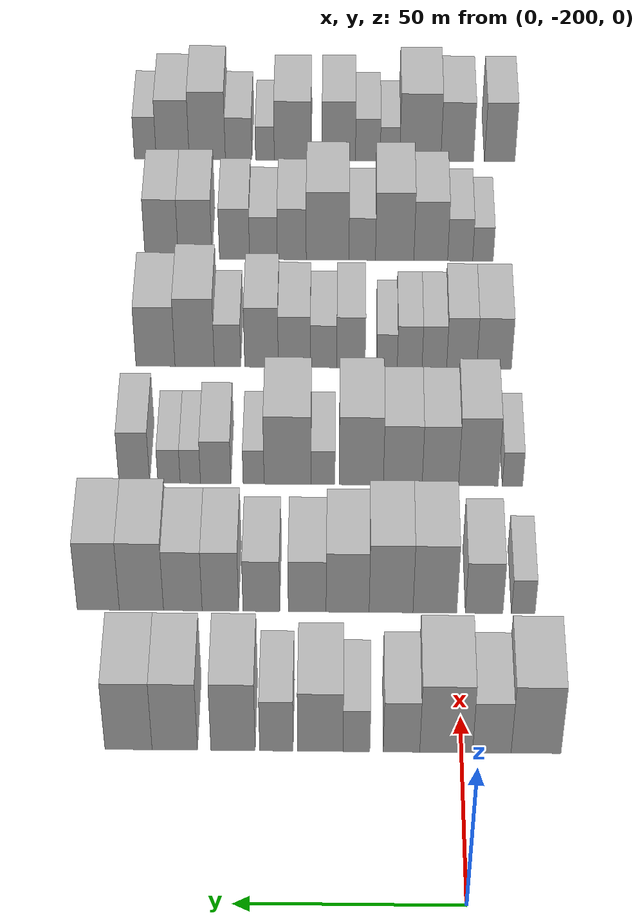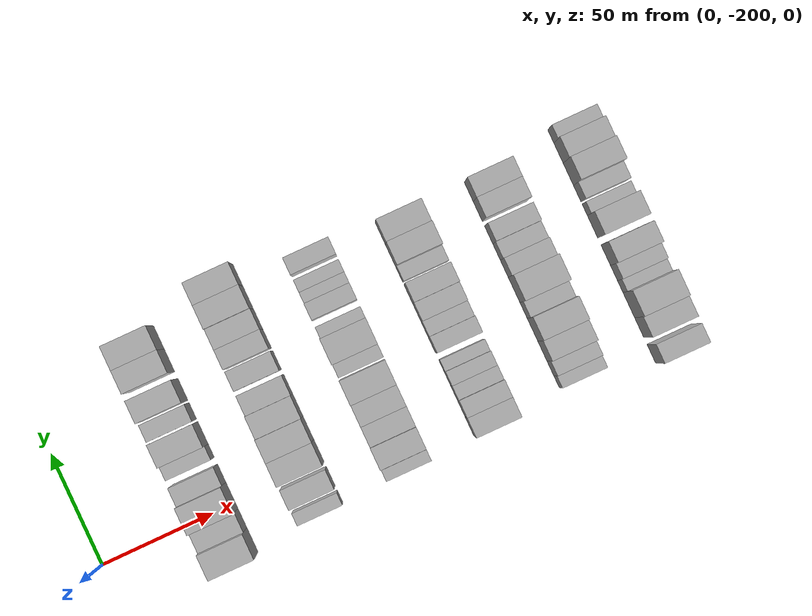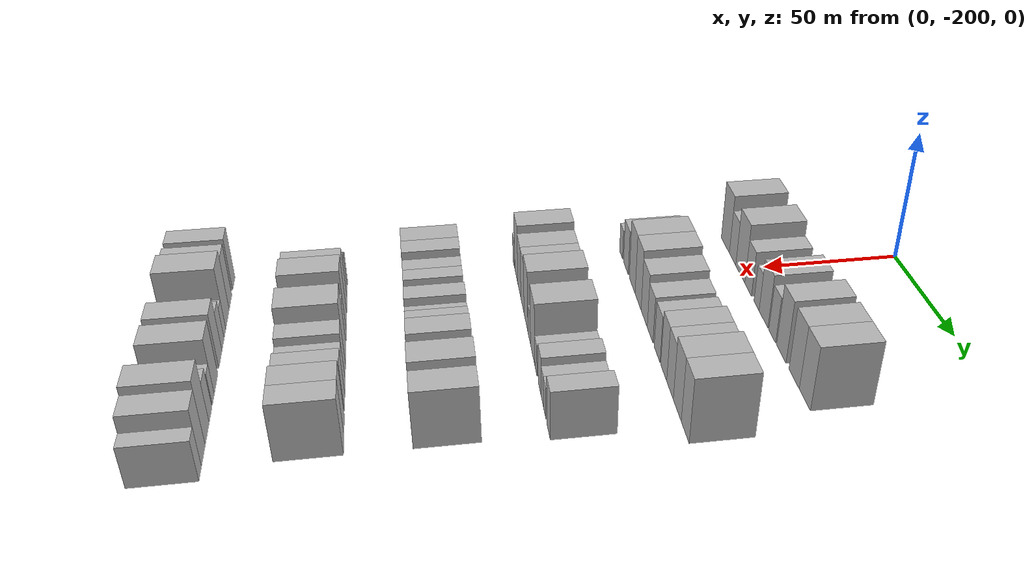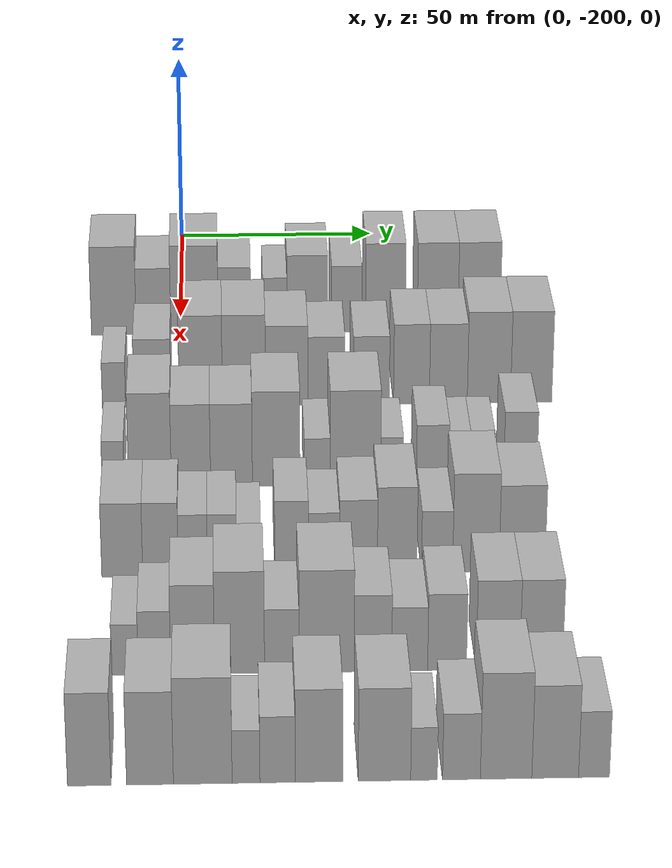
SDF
<sdf version="1.6">
 <world name="default">
  <model name="building_44">
   <static>1</static>
   <pose>50.0000 -216.5647 0 0.000000 0.000000 0.000000</pose>
   <link name="link">
    <pose>0 0 12.00 0 0 0</pose>
    <collision name="collision"><geometry><box><size>20.0000 11.1475 24.0000</size></box></geometry></collision>
    <visual name="visual">
     <cast_shadows>0</cast_shadows>
     <geometry><box><size>20.0000 11.1475 24.0000</size></box></geometry>
     <material>
      <script>
       <uri>model://HANNAS_wall/materials/scripts</uri>
       <uri>model://HANNAS_wall/materials/textures</uri>
       <name>vrc/HANNAS_wall</name>
      </script>
     </material>
    </visual>
   </link>
  </model>
  <model name="building_45">
   <static>1</static>
   <pose>50.0000 -206.6863 0 0.000000 0.000000 0.000000</pose>
   <link name="link">
    <pose>0 0 9.00 0 0 0</pose>
    <collision name="collision"><geometry><box><size>20.0000 8.6094 18.0000</size></box></geometry></collision>
    <visual name="visual">
     <cast_shadows>0</cast_shadows>
     <geometry><box><size>20.0000 8.6094 18.0000</size></box></geometry>
     <material>
      <script>
       <uri>model://HANNAS_wall/materials/scripts</uri>
       <uri>model://HANNAS_wall/materials/textures</uri>
       <name>vrc/HANNAS_wall</name>
      </script>
     </material>
    </visual>
   </link>
  </model>
  <model name="building_46">
   <static>1</static>
   <pose>50.0000 -196.4800 0 0.000000 0.000000 0.000000</pose>
   <link name="link">
    <pose>0 0 12.00 0 0 0</pose>
    <collision name="collision"><geometry><box><size>20.0000 11.8031 24.0000</size></box></geometry></collision>
    <visual name="visual">
     <cast_shadows>0</cast_shadows>
     <geometry><box><size>20.0000 11.8031 24.0000</size></box></geometry>
     <material>
      <script>
       <uri>model://HANNAS_wall/materials/scripts</uri>
       <uri>model://HANNAS_wall/materials/textures</uri>
       <name>vrc/HANNAS_wall</name>
      </script>
     </material>
    </visual>
   </link>
  </model>
  <model name="building_47">
   <static>1</static>
   <pose>50.0000 -186.5021 0 0.000000 0.000000 0.000000</pose>
   <link name="link">
    <pose>0 0 9.00 0 0 0</pose>
    <collision name="collision"><geometry><box><size>20.0000 8.1527 18.0000</size></box></geometry></collision>
    <visual name="visual">
     <cast_shadows>0</cast_shadows>
     <geometry><box><size>20.0000 8.1527 18.0000</size></box></geometry>
     <material>
      <script>
       <uri>model://HANNAS_wall/materials/scripts</uri>
       <uri>model://HANNAS_wall/materials/textures</uri>
       <name>vrc/HANNAS_wall</name>
      </script>
     </material>
    </visual>
   </link>
  </model>
  <model name="building_48">
   <static>1</static>
   <pose>50.0000 -176.4154 0 0.000000 0.000000 0.000000</pose>
   <link name="link">
    <pose>0 0 7.50 0 0 0</pose>
    <collision name="collision"><geometry><box><size>20.0000 6.0208 15.0000</size></box></geometry></collision>
    <visual name="visual">
     <cast_shadows>0</cast_shadows>
     <geometry><box><size>20.0000 6.0208 15.0000</size></box></geometry>
     <material>
      <script>
       <uri>model://HANNAS_wall/materials/scripts</uri>
       <uri>model://HANNAS_wall/materials/textures</uri>
       <name>vrc/HANNAS_wall</name>
      </script>
     </material>
    </visual>
   </link>
  </model>
  <model name="building_49">
   <static>1</static>
   <pose>50.0000 -168.3408 0 0.000000 0.000000 0.000000</pose>
   <link name="link">
    <pose>0 0 10.50 0 0 0</pose>
    <collision name="collision"><geometry><box><size>20.0000 10.1284 21.0000</size></box></geometry></collision>
    <visual name="visual">
     <cast_shadows>0</cast_shadows>
     <geometry><box><size>20.0000 10.1284 21.0000</size></box></geometry>
     <material>
      <script>
       <uri>model://HANNAS_wall/materials/scripts</uri>
       <uri>model://HANNAS_wall/materials/textures</uri>
       <name>vrc/HANNAS_wall</name>
      </script>
     </material>
    </visual>
   </link>
  </model>
  <model name="building_50">
   <static>1</static>
   <pose>50.0000 -158.5359 0 0.000000 0.000000 0.000000</pose>
   <link name="link">
    <pose>0 0 9.00 0 0 0</pose>
    <collision name="collision"><geometry><box><size>20.0000 7.4814 18.0000</size></box></geometry></collision>
    <visual name="visual">
     <cast_shadows>0</cast_shadows>
     <geometry><box><size>20.0000 7.4814 18.0000</size></box></geometry>
     <material>
      <script>
       <uri>model://HANNAS_wall/materials/scripts</uri>
       <uri>model://HANNAS_wall/materials/textures</uri>
       <name>vrc/HANNAS_wall</name>
      </script>
     </material>
    </visual>
   </link>
  </model>
  <model name="building_51">
   <static>1</static>
   <pose>50.0000 -148.8419 0 0.000000 0.000000 0.000000</pose>
   <link name="link">
    <pose>0 0 12.00 0 0 0</pose>
    <collision name="collision"><geometry><box><size>20.0000 9.9065 24.0000</size></box></geometry></collision>
    <visual name="visual">
     <cast_shadows>0</cast_shadows>
     <geometry><box><size>20.0000 9.9065 24.0000</size></box></geometry>
     <material>
      <script>
       <uri>model://HANNAS_wall/materials/scripts</uri>
       <uri>model://HANNAS_wall/materials/textures</uri>
       <name>vrc/HANNAS_wall</name>
      </script>
     </material>
    </visual>
   </link>
  </model>
  <model name="building_52">
   <static>1</static>
   <pose>50.0000 -135.8023 0 0.000000 0.000000 0.000000</pose>
   <link name="link">
    <pose>0 0 12.00 0 0 0</pose>
    <collision name="collision"><geometry><box><size>20.0000 10.1729 24.0000</size></box></geometry></collision>
    <visual name="visual">
     <cast_shadows>0</cast_shadows>
     <geometry><box><size>20.0000 10.1729 24.0000</size></box></geometry>
     <material>
      <script>
       <uri>model://HANNAS_wall/materials/scripts</uri>
       <uri>model://HANNAS_wall/materials/textures</uri>
       <name>vrc/HANNAS_wall</name>
      </script>
     </material>
    </visual>
   </link>
  </model>
  <model name="building_53">
   <static>1</static>
   <pose>50.0000 -125.4422 0 0.000000 0.000000 0.000000</pose>
   <link name="link">
    <pose>0 0 12.00 0 0 0</pose>
    <collision name="collision"><geometry><box><size>20.0000 10.5472 24.0000</size></box></geometry></collision>
    <visual name="visual">
     <cast_shadows>0</cast_shadows>
     <geometry><box><size>20.0000 10.5472 24.0000</size></box></geometry>
     <material>
      <script>
       <uri>model://HANNAS_wall/materials/scripts</uri>
       <uri>model://HANNAS_wall/materials/textures</uri>
       <name>vrc/HANNAS_wall</name>
      </script>
     </material>
    </visual>
   </link>
  </model>
  <model name="building_176">
   <static>1</static>
   <pose>90.0000 -215.4520 0 0.000000 0.000000 0.000000</pose>
   <link name="link">
    <pose>0 0 6.00 0 0 0</pose>
    <collision name="collision"><geometry><box><size>20.0000 5.5303 12.0000</size></box></geometry></collision>
    <visual name="visual">
     <cast_shadows>0</cast_shadows>
     <geometry><box><size>20.0000 5.5303 12.0000</size></box></geometry>
     <material>
      <script>
       <uri>model://HANNAS_wall/materials/scripts</uri>
       <uri>model://HANNAS_wall/materials/textures</uri>
       <name>vrc/HANNAS_wall</name>
      </script>
     </material>
    </visual>
   </link>
  </model>
  <model name="building_177">
   <static>1</static>
   <pose>90.0000 -206.3000 0 0.000000 0.000000 0.000000</pose>
   <link name="link">
    <pose>0 0 9.00 0 0 0</pose>
    <collision name="collision"><geometry><box><size>20.0000 8.7736 18.0000</size></box></geometry></collision>
    <visual name="visual">
     <cast_shadows>0</cast_shadows>
     <geometry><box><size>20.0000 8.7736 18.0000</size></box></geometry>
     <material>
      <script>
       <uri>model://HANNAS_wall/materials/scripts</uri>
       <uri>model://HANNAS_wall/materials/textures</uri>
       <name>vrc/HANNAS_wall</name>
      </script>
     </material>
    </visual>
   </link>
  </model>
  <model name="building_178">
   <static>1</static>
   <pose>90.0000 -194.7817 0 0.000000 0.000000 0.000000</pose>
   <link name="link">
    <pose>0 0 12.00 0 0 0</pose>
    <collision name="collision"><geometry><box><size>20.0000 10.2629 24.0000</size></box></geometry></collision>
    <visual name="visual">
     <cast_shadows>0</cast_shadows>
     <geometry><box><size>20.0000 10.2629 24.0000</size></box></geometry>
     <material>
      <script>
       <uri>model://HANNAS_wall/materials/scripts</uri>
       <uri>model://HANNAS_wall/materials/textures</uri>
       <name>vrc/HANNAS_wall</name>
      </script>
     </material>
    </visual>
   </link>
  </model>
  <model name="building_179">
   <static>1</static>
   <pose>90.0000 -184.5133 0 0.000000 0.000000 0.000000</pose>
   <link name="link">
    <pose>0 0 12.00 0 0 0</pose>
    <collision name="collision"><geometry><box><size>20.0000 10.2740 24.0000</size></box></geometry></collision>
    <visual name="visual">
     <cast_shadows>0</cast_shadows>
     <geometry><box><size>20.0000 10.2740 24.0000</size></box></geometry>
     <material>
      <script>
       <uri>model://HANNAS_wall/materials/scripts</uri>
       <uri>model://HANNAS_wall/materials/textures</uri>
       <name>vrc/HANNAS_wall</name>
      </script>
     </material>
    </visual>
   </link>
  </model>
  <model name="building_180">
   <static>1</static>
   <pose>90.0000 -174.3441 0 0.000000 0.000000 0.000000</pose>
   <link name="link">
    <pose>0 0 10.50 0 0 0</pose>
    <collision name="collision"><geometry><box><size>20.0000 10.0643 21.0000</size></box></geometry></collision>
    <visual name="visual">
     <cast_shadows>0</cast_shadows>
     <geometry><box><size>20.0000 10.0643 21.0000</size></box></geometry>
     <material>
      <script>
       <uri>model://HANNAS_wall/materials/scripts</uri>
       <uri>model://HANNAS_wall/materials/textures</uri>
       <name>vrc/HANNAS_wall</name>
      </script>
     </material>
    </visual>
   </link>
  </model>
  <model name="building_181">
   <static>1</static>
   <pose>90.0000 -164.8928 0 0.000000 0.000000 0.000000</pose>
   <link name="link">
    <pose>0 0 9.00 0 0 0</pose>
    <collision name="collision"><geometry><box><size>20.0000 8.8382 18.0000</size></box></geometry></collision>
    <visual name="visual">
     <cast_shadows>0</cast_shadows>
     <geometry><box><size>20.0000 8.8382 18.0000</size></box></geometry>
     <material>
      <script>
       <uri>model://HANNAS_wall/materials/scripts</uri>
       <uri>model://HANNAS_wall/materials/textures</uri>
       <name>vrc/HANNAS_wall</name>
      </script>
     </material>
    </visual>
   </link>
  </model>
  <model name="building_182">
   <static>1</static>
   <pose>90.0000 -154.1672 0 0.000000 0.000000 0.000000</pose>
   <link name="link">
    <pose>0 0 9.00 0 0 0</pose>
    <collision name="collision"><geometry><box><size>20.0000 8.6129 18.0000</size></box></geometry></collision>
    <visual name="visual">
     <cast_shadows>0</cast_shadows>
     <geometry><box><size>20.0000 8.6129 18.0000</size></box></geometry>
     <material>
      <script>
       <uri>model://HANNAS_wall/materials/scripts</uri>
       <uri>model://HANNAS_wall/materials/textures</uri>
       <name>vrc/HANNAS_wall</name>
      </script>
     </material>
    </visual>
   </link>
  </model>
  <model name="building_183">
   <static>1</static>
   <pose>90.0000 -144.5751 0 0.000000 0.000000 0.000000</pose>
   <link name="link">
    <pose>0 0 10.50 0 0 0</pose>
    <collision name="collision"><geometry><box><size>20.0000 8.5715 21.0000</size></box></geometry></collision>
    <visual name="visual">
     <cast_shadows>0</cast_shadows>
     <geometry><box><size>20.0000 8.5715 21.0000</size></box></geometry>
     <material>
      <script>
       <uri>model://HANNAS_wall/materials/scripts</uri>
       <uri>model://HANNAS_wall/materials/textures</uri>
       <name>vrc/HANNAS_wall</name>
      </script>
     </material>
    </visual>
   </link>
  </model>
  <model name="building_184">
   <static>1</static>
   <pose>90.0000 -135.7618 0 0.000000 0.000000 0.000000</pose>
   <link name="link">
    <pose>0 0 10.50 0 0 0</pose>
    <collision name="collision"><geometry><box><size>20.0000 9.0550 21.0000</size></box></geometry></collision>
    <visual name="visual">
     <cast_shadows>0</cast_shadows>
     <geometry><box><size>20.0000 9.0550 21.0000</size></box></geometry>
     <material>
      <script>
       <uri>model://HANNAS_wall/materials/scripts</uri>
       <uri>model://HANNAS_wall/materials/textures</uri>
       <name>vrc/HANNAS_wall</name>
      </script>
     </material>
    </visual>
   </link>
  </model>
  <model name="building_185">
   <static>1</static>
   <pose>90.0000 -126.0591 0 0.000000 0.000000 0.000000</pose>
   <link name="link">
    <pose>0 0 12.00 0 0 0</pose>
    <collision name="collision"><geometry><box><size>20.0000 10.3504 24.0000</size></box></geometry></collision>
    <visual name="visual">
     <cast_shadows>0</cast_shadows>
     <geometry><box><size>20.0000 10.3504 24.0000</size></box></geometry>
     <material>
      <script>
       <uri>model://HANNAS_wall/materials/scripts</uri>
       <uri>model://HANNAS_wall/materials/textures</uri>
       <name>vrc/HANNAS_wall</name>
      </script>
     </material>
    </visual>
   </link>
  </model>
  <model name="building_186">
   <static>1</static>
   <pose>90.0000 -115.9484 0 0.000000 0.000000 0.000000</pose>
   <link name="link">
    <pose>0 0 12.00 0 0 0</pose>
    <collision name="collision"><geometry><box><size>20.0000 9.8711 24.0000</size></box></geometry></collision>
    <visual name="visual">
     <cast_shadows>0</cast_shadows>
     <geometry><box><size>20.0000 9.8711 24.0000</size></box></geometry>
     <material>
      <script>
       <uri>model://HANNAS_wall/materials/scripts</uri>
       <uri>model://HANNAS_wall/materials/textures</uri>
       <name>vrc/HANNAS_wall</name>
      </script>
     </material>
    </visual>
   </link>
  </model>
  <model name="building_314">
   <static>1</static>
   <pose>130.0000 -214.5521 0 0.000000 0.000000 0.000000</pose>
   <link name="link">
    <pose>0 0 6.00 0 0 0</pose>
    <collision name="collision"><geometry><box><size>20.0000 4.9905 12.0000</size></box></geometry></collision>
    <visual name="visual">
     <cast_shadows>0</cast_shadows>
     <geometry><box><size>20.0000 4.9905 12.0000</size></box></geometry>
     <material>
      <script>
       <uri>model://HANNAS_wall/materials/scripts</uri>
       <uri>model://HANNAS_wall/materials/textures</uri>
       <name>vrc/HANNAS_wall</name>
      </script>
     </material>
    </visual>
   </link>
  </model>
  <model name="building_315">
   <static>1</static>
   <pose>130.0000 -206.2146 0 0.000000 0.000000 0.000000</pose>
   <link name="link">
    <pose>0 0 12.00 0 0 0</pose>
    <collision name="collision"><geometry><box><size>20.0000 9.6845 24.0000</size></box></geometry></collision>
    <visual name="visual">
     <cast_shadows>0</cast_shadows>
     <geometry><box><size>20.0000 9.6845 24.0000</size></box></geometry>
     <material>
      <script>
       <uri>model://HANNAS_wall/materials/scripts</uri>
       <uri>model://HANNAS_wall/materials/textures</uri>
       <name>vrc/HANNAS_wall</name>
      </script>
     </material>
    </visual>
   </link>
  </model>
  <model name="building_316">
   <static>1</static>
   <pose>130.0000 -196.9230 0 0.000000 0.000000 0.000000</pose>
   <link name="link">
    <pose>0 0 10.50 0 0 0</pose>
    <collision name="collision"><geometry><box><size>20.0000 8.8988 21.0000</size></box></geometry></collision>
    <visual name="visual">
     <cast_shadows>0</cast_shadows>
     <geometry><box><size>20.0000 8.8988 21.0000</size></box></geometry>
     <material>
      <script>
       <uri>model://HANNAS_wall/materials/scripts</uri>
       <uri>model://HANNAS_wall/materials/textures</uri>
       <name>vrc/HANNAS_wall</name>
      </script>
     </material>
    </visual>
   </link>
  </model>
  <model name="building_317">
   <static>1</static>
   <pose>130.0000 -187.7262 0 0.000000 0.000000 0.000000</pose>
   <link name="link">
    <pose>0 0 10.50 0 0 0</pose>
    <collision name="collision"><geometry><box><size>20.0000 9.4947 21.0000</size></box></geometry></collision>
    <visual name="visual">
     <cast_shadows>0</cast_shadows>
     <geometry><box><size>20.0000 9.4947 21.0000</size></box></geometry>
     <material>
      <script>
       <uri>model://HANNAS_wall/materials/scripts</uri>
       <uri>model://HANNAS_wall/materials/textures</uri>
       <name>vrc/HANNAS_wall</name>
      </script>
     </material>
    </visual>
   </link>
  </model>
  <model name="building_318">
   <static>1</static>
   <pose>130.0000 -177.5683 0 0.000000 0.000000 0.000000</pose>
   <link name="link">
    <pose>0 0 12.00 0 0 0</pose>
    <collision name="collision"><geometry><box><size>20.0000 10.8212 24.0000</size></box></geometry></collision>
    <visual name="visual">
     <cast_shadows>0</cast_shadows>
     <geometry><box><size>20.0000 10.8212 24.0000</size></box></geometry>
     <material>
      <script>
       <uri>model://HANNAS_wall/materials/scripts</uri>
       <uri>model://HANNAS_wall/materials/textures</uri>
       <name>vrc/HANNAS_wall</name>
      </script>
     </material>
    </visual>
   </link>
  </model>
  <model name="building_319">
   <static>1</static>
   <pose>130.0000 -168.2285 0 0.000000 0.000000 0.000000</pose>
   <link name="link">
    <pose>0 0 6.00 0 0 0</pose>
    <collision name="collision"><geometry><box><size>20.0000 5.8583 12.0000</size></box></geometry></collision>
    <visual name="visual">
     <cast_shadows>0</cast_shadows>
     <geometry><box><size>20.0000 5.8583 12.0000</size></box></geometry>
     <material>
      <script>
       <uri>model://HANNAS_wall/materials/scripts</uri>
       <uri>model://HANNAS_wall/materials/textures</uri>
       <name>vrc/HANNAS_wall</name>
      </script>
     </material>
    </visual>
   </link>
  </model>
  <model name="building_320">
   <static>1</static>
   <pose>130.0000 -159.5624 0 0.000000 0.000000 0.000000</pose>
   <link name="link">
    <pose>0 0 12.00 0 0 0</pose>
    <collision name="collision"><geometry><box><size>20.0000 11.4741 24.0000</size></box></geometry></collision>
    <visual name="visual">
     <cast_shadows>0</cast_shadows>
     <geometry><box><size>20.0000 11.4741 24.0000</size></box></geometry>
     <material>
      <script>
       <uri>model://HANNAS_wall/materials/scripts</uri>
       <uri>model://HANNAS_wall/materials/textures</uri>
       <name>vrc/HANNAS_wall</name>
      </script>
     </material>
    </visual>
   </link>
  </model>
  <model name="building_321">
   <static>1</static>
   <pose>130.0000 -151.2605 0 0.000000 0.000000 0.000000</pose>
   <link name="link">
    <pose>0 0 6.00 0 0 0</pose>
    <collision name="collision"><geometry><box><size>20.0000 5.1297 12.0000</size></box></geometry></collision>
    <visual name="visual">
     <cast_shadows>0</cast_shadows>
     <geometry><box><size>20.0000 5.1297 12.0000</size></box></geometry>
     <material>
      <script>
       <uri>model://HANNAS_wall/materials/scripts</uri>
       <uri>model://HANNAS_wall/materials/textures</uri>
       <name>vrc/HANNAS_wall</name>
      </script>
     </material>
    </visual>
   </link>
  </model>
  <model name="building_322">
   <static>1</static>
   <pose>130.0000 -141.9726 0 0.000000 0.000000 0.000000</pose>
   <link name="link">
    <pose>0 0 7.50 0 0 0</pose>
    <collision name="collision"><geometry><box><size>20.0000 7.4460 15.0000</size></box></geometry></collision>
    <visual name="visual">
     <cast_shadows>0</cast_shadows>
     <geometry><box><size>20.0000 7.4460 15.0000</size></box></geometry>
     <material>
      <script>
       <uri>model://HANNAS_wall/materials/scripts</uri>
       <uri>model://HANNAS_wall/materials/textures</uri>
       <name>vrc/HANNAS_wall</name>
      </script>
     </material>
    </visual>
   </link>
  </model>
  <model name="building_323">
   <static>1</static>
   <pose>130.0000 -135.7686 0 0.000000 0.000000 0.000000</pose>
   <link name="link">
    <pose>0 0 6.00 0 0 0</pose>
    <collision name="collision"><geometry><box><size>20.0000 4.9620 12.0000</size></box></geometry></collision>
    <visual name="visual">
     <cast_shadows>0</cast_shadows>
     <geometry><box><size>20.0000 4.9620 12.0000</size></box></geometry>
     <material>
      <script>
       <uri>model://HANNAS_wall/materials/scripts</uri>
       <uri>model://HANNAS_wall/materials/textures</uri>
       <name>vrc/HANNAS_wall</name>
      </script>
     </material>
    </visual>
   </link>
  </model>
  <model name="building_324">
   <static>1</static>
   <pose>130.0000 -130.5524 0 0.000000 0.000000 0.000000</pose>
   <link name="link">
    <pose>0 0 6.00 0 0 0</pose>
    <collision name="collision"><geometry><box><size>20.0000 5.4705 12.0000</size></box></geometry></collision>
    <visual name="visual">
     <cast_shadows>0</cast_shadows>
     <geometry><box><size>20.0000 5.4705 12.0000</size></box></geometry>
     <material>
      <script>
       <uri>model://HANNAS_wall/materials/scripts</uri>
       <uri>model://HANNAS_wall/materials/textures</uri>
       <name>vrc/HANNAS_wall</name>
      </script>
     </material>
    </visual>
   </link>
  </model>
  <model name="building_325">
   <static>1</static>
   <pose>130.0000 -122.0433 0 0.000000 0.000000 0.000000</pose>
   <link name="link">
    <pose>0 0 9.00 0 0 0</pose>
    <collision name="collision"><geometry><box><size>20.0000 7.5478 18.0000</size></box></geometry></collision>
    <visual name="visual">
     <cast_shadows>0</cast_shadows>
     <geometry><box><size>20.0000 7.5478 18.0000</size></box></geometry>
     <material>
      <script>
       <uri>model://HANNAS_wall/materials/scripts</uri>
       <uri>model://HANNAS_wall/materials/textures</uri>
       <name>vrc/HANNAS_wall</name>
      </script>
     </material>
    </visual>
   </link>
  </model>
  <model name="building_451">
   <static>1</static>
   <pose>170.0000 -211.5115 0 0.000000 0.000000 0.000000</pose>
   <link name="link">
    <pose>0 0 9.00 0 0 0</pose>
    <collision name="collision"><geometry><box><size>20.0000 8.8136 18.0000</size></box></geometry></collision>
    <visual name="visual">
     <cast_shadows>0</cast_shadows>
     <geometry><box><size>20.0000 8.8136 18.0000</size></box></geometry>
     <material>
      <script>
       <uri>model://HANNAS_wall/materials/scripts</uri>
       <uri>model://HANNAS_wall/materials/textures</uri>
       <name>vrc/HANNAS_wall</name>
      </script>
     </material>
    </visual>
   </link>
  </model>
  <model name="building_452">
   <static>1</static>
   <pose>170.0000 -203.2543 0 0.000000 0.000000 0.000000</pose>
   <link name="link">
    <pose>0 0 9.00 0 0 0</pose>
    <collision name="collision"><geometry><box><size>20.0000 7.7008 18.0000</size></box></geometry></collision>
    <visual name="visual">
     <cast_shadows>0</cast_shadows>
     <geometry><box><size>20.0000 7.7008 18.0000</size></box></geometry>
     <material>
      <script>
       <uri>model://HANNAS_wall/materials/scripts</uri>
       <uri>model://HANNAS_wall/materials/textures</uri>
       <name>vrc/HANNAS_wall</name>
      </script>
     </material>
    </visual>
   </link>
  </model>
  <model name="building_453">
   <static>1</static>
   <pose>170.0000 -196.2650 0 0.000000 0.000000 0.000000</pose>
   <link name="link">
    <pose>0 0 7.50 0 0 0</pose>
    <collision name="collision"><geometry><box><size>20.0000 6.2778 15.0000</size></box></geometry></collision>
    <visual name="visual">
     <cast_shadows>0</cast_shadows>
     <geometry><box><size>20.0000 6.2778 15.0000</size></box></geometry>
     <material>
      <script>
       <uri>model://HANNAS_wall/materials/scripts</uri>
       <uri>model://HANNAS_wall/materials/textures</uri>
       <name>vrc/HANNAS_wall</name>
      </script>
     </material>
    </visual>
   </link>
  </model>
  <model name="building_454">
   <static>1</static>
   <pose>170.0000 -189.9625 0 0.000000 0.000000 0.000000</pose>
   <link name="link">
    <pose>0 0 7.50 0 0 0</pose>
    <collision name="collision"><geometry><box><size>20.0000 6.3271 15.0000</size></box></geometry></collision>
    <visual name="visual">
     <cast_shadows>0</cast_shadows>
     <geometry><box><size>20.0000 6.3271 15.0000</size></box></geometry>
     <material>
      <script>
       <uri>model://HANNAS_wall/materials/scripts</uri>
       <uri>model://HANNAS_wall/materials/textures</uri>
       <name>vrc/HANNAS_wall</name>
      </script>
     </material>
    </visual>
   </link>
  </model>
  <model name="building_455">
   <static>1</static>
   <pose>170.0000 -184.1979 0 0.000000 0.000000 0.000000</pose>
   <link name="link">
    <pose>0 0 6.00 0 0 0</pose>
    <collision name="collision"><geometry><box><size>20.0000 5.2022 12.0000</size></box></geometry></collision>
    <visual name="visual">
     <cast_shadows>0</cast_shadows>
     <geometry><box><size>20.0000 5.2022 12.0000</size></box></geometry>
     <material>
      <script>
       <uri>model://HANNAS_wall/materials/scripts</uri>
       <uri>model://HANNAS_wall/materials/textures</uri>
       <name>vrc/HANNAS_wall</name>
      </script>
     </material>
    </visual>
   </link>
  </model>
  <model name="building_456">
   <static>1</static>
   <pose>170.0000 -174.9725 0 0.000000 0.000000 0.000000</pose>
   <link name="link">
    <pose>0 0 9.00 0 0 0</pose>
    <collision name="collision"><geometry><box><size>20.0000 7.2486 18.0000</size></box></geometry></collision>
    <visual name="visual">
     <cast_shadows>0</cast_shadows>
     <geometry><box><size>20.0000 7.2486 18.0000</size></box></geometry>
     <material>
      <script>
       <uri>model://HANNAS_wall/materials/scripts</uri>
       <uri>model://HANNAS_wall/materials/textures</uri>
       <name>vrc/HANNAS_wall</name>
      </script>
     </material>
    </visual>
   </link>
  </model>
  <model name="building_457">
   <static>1</static>
   <pose>170.0000 -167.9821 0 0.000000 0.000000 0.000000</pose>
   <link name="link">
    <pose>0 0 7.50 0 0 0</pose>
    <collision name="collision"><geometry><box><size>20.0000 6.7320 15.0000</size></box></geometry></collision>
    <visual name="visual">
     <cast_shadows>0</cast_shadows>
     <geometry><box><size>20.0000 6.7320 15.0000</size></box></geometry>
     <material>
      <script>
       <uri>model://HANNAS_wall/materials/scripts</uri>
       <uri>model://HANNAS_wall/materials/textures</uri>
       <name>vrc/HANNAS_wall</name>
      </script>
     </material>
    </visual>
   </link>
  </model>
  <model name="building_458">
   <static>1</static>
   <pose>170.0000 -160.5341 0 0.000000 0.000000 0.000000</pose>
   <link name="link">
    <pose>0 0 9.00 0 0 0</pose>
    <collision name="collision"><geometry><box><size>20.0000 8.1640 18.0000</size></box></geometry></collision>
    <visual name="visual">
     <cast_shadows>0</cast_shadows>
     <geometry><box><size>20.0000 8.1640 18.0000</size></box></geometry>
     <material>
      <script>
       <uri>model://HANNAS_wall/materials/scripts</uri>
       <uri>model://HANNAS_wall/materials/textures</uri>
       <name>vrc/HANNAS_wall</name>
      </script>
     </material>
    </visual>
   </link>
  </model>
  <model name="building_459">
   <static>1</static>
   <pose>170.0000 -152.1745 0 0.000000 0.000000 0.000000</pose>
   <link name="link">
    <pose>0 0 10.50 0 0 0</pose>
    <collision name="collision"><geometry><box><size>20.0000 8.5552 21.0000</size></box></geometry></collision>
    <visual name="visual">
     <cast_shadows>0</cast_shadows>
     <geometry><box><size>20.0000 8.5552 21.0000</size></box></geometry>
     <material>
      <script>
       <uri>model://HANNAS_wall/materials/scripts</uri>
       <uri>model://HANNAS_wall/materials/textures</uri>
       <name>vrc/HANNAS_wall</name>
      </script>
     </material>
    </visual>
   </link>
  </model>
  <model name="building_460">
   <static>1</static>
   <pose>170.0000 -143.5175 0 0.000000 0.000000 0.000000</pose>
   <link name="link">
    <pose>0 0 7.50 0 0 0</pose>
    <collision name="collision"><geometry><box><size>20.0000 6.7588 15.0000</size></box></geometry></collision>
    <visual name="visual">
     <cast_shadows>0</cast_shadows>
     <geometry><box><size>20.0000 6.7588 15.0000</size></box></geometry>
     <material>
      <script>
       <uri>model://HANNAS_wall/materials/scripts</uri>
       <uri>model://HANNAS_wall/materials/textures</uri>
       <name>vrc/HANNAS_wall</name>
      </script>
     </material>
    </visual>
   </link>
  </model>
  <model name="building_461">
   <static>1</static>
   <pose>170.0000 -135.1161 0 0.000000 0.000000 0.000000</pose>
   <link name="link">
    <pose>0 0 12.00 0 0 0</pose>
    <collision name="collision"><geometry><box><size>20.0000 10.0440 24.0000</size></box></geometry></collision>
    <visual name="visual">
     <cast_shadows>0</cast_shadows>
     <geometry><box><size>20.0000 10.0440 24.0000</size></box></geometry>
     <material>
      <script>
       <uri>model://HANNAS_wall/materials/scripts</uri>
       <uri>model://HANNAS_wall/materials/textures</uri>
       <name>vrc/HANNAS_wall</name>
      </script>
     </material>
    </visual>
   </link>
  </model>
  <model name="building_462">
   <static>1</static>
   <pose>170.0000 -125.1104 0 0.000000 0.000000 0.000000</pose>
   <link name="link">
    <pose>0 0 10.50 0 0 0</pose>
    <collision name="collision"><geometry><box><size>20.0000 9.9674 21.0000</size></box></geometry></collision>
    <visual name="visual">
     <cast_shadows>0</cast_shadows>
     <geometry><box><size>20.0000 9.9674 21.0000</size></box></geometry>
     <material>
      <script>
       <uri>model://HANNAS_wall/materials/scripts</uri>
       <uri>model://HANNAS_wall/materials/textures</uri>
       <name>vrc/HANNAS_wall</name>
      </script>
     </material>
    </visual>
   </link>
  </model>
  <model name="building_589">
   <static>1</static>
   <pose>210.0000 -209.9776 0 0.000000 0.000000 0.000000</pose>
   <link name="link">
    <pose>0 0 6.00 0 0 0</pose>
    <collision name="collision"><geometry><box><size>20.0000 5.4518 12.0000</size></box></geometry></collision>
    <visual name="visual">
     <cast_shadows>0</cast_shadows>
     <geometry><box><size>20.0000 5.4518 12.0000</size></box></geometry>
     <material>
      <script>
       <uri>model://HANNAS_wall/materials/scripts</uri>
       <uri>model://HANNAS_wall/materials/textures</uri>
       <name>vrc/HANNAS_wall</name>
      </script>
     </material>
    </visual>
   </link>
  </model>
  <model name="building_590">
   <static>1</static>
   <pose>210.0000 -203.9293 0 0.000000 0.000000 0.000000</pose>
   <link name="link">
    <pose>0 0 7.50 0 0 0</pose>
    <collision name="collision"><geometry><box><size>20.0000 6.6447 15.0000</size></box></geometry></collision>
    <visual name="visual">
     <cast_shadows>0</cast_shadows>
     <geometry><box><size>20.0000 6.6447 15.0000</size></box></geometry>
     <material>
      <script>
       <uri>model://HANNAS_wall/materials/scripts</uri>
       <uri>model://HANNAS_wall/materials/textures</uri>
       <name>vrc/HANNAS_wall</name>
      </script>
     </material>
    </visual>
   </link>
  </model>
  <model name="building_591">
   <static>1</static>
   <pose>210.0000 -196.1174 0 0.000000 0.000000 0.000000</pose>
   <link name="link">
    <pose>0 0 10.50 0 0 0</pose>
    <collision name="collision"><geometry><box><size>20.0000 8.9791 21.0000</size></box></geometry></collision>
    <visual name="visual">
     <cast_shadows>0</cast_shadows>
     <geometry><box><size>20.0000 8.9791 21.0000</size></box></geometry>
     <material>
      <script>
       <uri>model://HANNAS_wall/materials/scripts</uri>
       <uri>model://HANNAS_wall/materials/textures</uri>
       <name>vrc/HANNAS_wall</name>
      </script>
     </material>
    </visual>
   </link>
  </model>
  <model name="building_592">
   <static>1</static>
   <pose>210.0000 -186.5278 0 0.000000 0.000000 0.000000</pose>
   <link name="link">
    <pose>0 0 12.00 0 0 0</pose>
    <collision name="collision"><geometry><box><size>20.0000 10.2000 24.0000</size></box></geometry></collision>
    <visual name="visual">
     <cast_shadows>0</cast_shadows>
     <geometry><box><size>20.0000 10.2000 24.0000</size></box></geometry>
     <material>
      <script>
       <uri>model://HANNAS_wall/materials/scripts</uri>
       <uri>model://HANNAS_wall/materials/textures</uri>
       <name>vrc/HANNAS_wall</name>
      </script>
     </material>
    </visual>
   </link>
  </model>
  <model name="building_593">
   <static>1</static>
   <pose>210.0000 -177.8945 0 0.000000 0.000000 0.000000</pose>
   <link name="link">
    <pose>0 0 7.50 0 0 0</pose>
    <collision name="collision"><geometry><box><size>20.0000 7.0667 15.0000</size></box></geometry></collision>
    <visual name="visual">
     <cast_shadows>0</cast_shadows>
     <geometry><box><size>20.0000 7.0667 15.0000</size></box></geometry>
     <material>
      <script>
       <uri>model://HANNAS_wall/materials/scripts</uri>
       <uri>model://HANNAS_wall/materials/textures</uri>
       <name>vrc/HANNAS_wall</name>
      </script>
     </material>
    </visual>
   </link>
  </model>
  <model name="building_594">
   <static>1</static>
   <pose>210.0000 -168.7058 0 0.000000 0.000000 0.000000</pose>
   <link name="link">
    <pose>0 0 12.00 0 0 0</pose>
    <collision name="collision"><geometry><box><size>20.0000 11.3108 24.0000</size></box></geometry></collision>
    <visual name="visual">
     <cast_shadows>0</cast_shadows>
     <geometry><box><size>20.0000 11.3108 24.0000</size></box></geometry>
     <material>
      <script>
       <uri>model://HANNAS_wall/materials/scripts</uri>
       <uri>model://HANNAS_wall/materials/textures</uri>
       <name>vrc/HANNAS_wall</name>
      </script>
     </material>
    </visual>
   </link>
  </model>
  <model name="building_595">
   <static>1</static>
   <pose>210.0000 -159.2103 0 0.000000 0.000000 0.000000</pose>
   <link name="link">
    <pose>0 0 9.00 0 0 0</pose>
    <collision name="collision"><geometry><box><size>20.0000 7.6800 18.0000</size></box></geometry></collision>
    <visual name="visual">
     <cast_shadows>0</cast_shadows>
     <geometry><box><size>20.0000 7.6800 18.0000</size></box></geometry>
     <material>
      <script>
       <uri>model://HANNAS_wall/materials/scripts</uri>
       <uri>model://HANNAS_wall/materials/textures</uri>
       <name>vrc/HANNAS_wall</name>
      </script>
     </material>
    </visual>
   </link>
  </model>
  <model name="building_596">
   <static>1</static>
   <pose>210.0000 -151.6812 0 0.000000 0.000000 0.000000</pose>
   <link name="link">
    <pose>0 0 7.50 0 0 0</pose>
    <collision name="collision"><geometry><box><size>20.0000 7.3782 15.0000</size></box></geometry></collision>
    <visual name="visual">
     <cast_shadows>0</cast_shadows>
     <geometry><box><size>20.0000 7.3782 15.0000</size></box></geometry>
     <material>
      <script>
       <uri>model://HANNAS_wall/materials/scripts</uri>
       <uri>model://HANNAS_wall/materials/textures</uri>
       <name>vrc/HANNAS_wall</name>
      </script>
     </material>
    </visual>
   </link>
  </model>
  <model name="building_597">
   <static>1</static>
   <pose>210.0000 -144.0038 0 0.000000 0.000000 0.000000</pose>
   <link name="link">
    <pose>0 0 9.00 0 0 0</pose>
    <collision name="collision"><geometry><box><size>20.0000 7.9766 18.0000</size></box></geometry></collision>
    <visual name="visual">
     <cast_shadows>0</cast_shadows>
     <geometry><box><size>20.0000 7.9766 18.0000</size></box></geometry>
     <material>
      <script>
       <uri>model://HANNAS_wall/materials/scripts</uri>
       <uri>model://HANNAS_wall/materials/textures</uri>
       <name>vrc/HANNAS_wall</name>
      </script>
     </material>
    </visual>
   </link>
  </model>
  <model name="building_598">
   <static>1</static>
   <pose>210.0000 -133.5295 0 0.000000 0.000000 0.000000</pose>
   <link name="link">
    <pose>0 0 10.50 0 0 0</pose>
    <collision name="collision"><geometry><box><size>20.0000 8.9721 21.0000</size></box></geometry></collision>
    <visual name="visual">
     <cast_shadows>0</cast_shadows>
     <geometry><box><size>20.0000 8.9721 21.0000</size></box></geometry>
     <material>
      <script>
       <uri>model://HANNAS_wall/materials/scripts</uri>
       <uri>model://HANNAS_wall/materials/textures</uri>
       <name>vrc/HANNAS_wall</name>
      </script>
     </material>
    </visual>
   </link>
  </model>
  <model name="building_599">
   <static>1</static>
   <pose>210.0000 -124.6405 0 0.000000 0.000000 0.000000</pose>
   <link name="link">
    <pose>0 0 10.50 0 0 0</pose>
    <collision name="collision"><geometry><box><size>20.0000 8.8059 21.0000</size></box></geometry></collision>
    <visual name="visual">
     <cast_shadows>0</cast_shadows>
     <geometry><box><size>20.0000 8.8059 21.0000</size></box></geometry>
     <material>
      <script>
       <uri>model://HANNAS_wall/materials/scripts</uri>
       <uri>model://HANNAS_wall/materials/textures</uri>
       <name>vrc/HANNAS_wall</name>
      </script>
     </material>
    </visual>
   </link>
  </model>
  <model name="building_721">
   <static>1</static>
   <pose>250.0000 -215.9213 0 0.000000 0.000000 0.000000</pose>
   <link name="link">
    <pose>0 0 10.50 0 0 0</pose>
    <collision name="collision"><geometry><box><size>20.0000 8.4050 21.0000</size></box></geometry></collision>
    <visual name="visual">
     <cast_shadows>0</cast_shadows>
     <geometry><box><size>20.0000 8.4050 21.0000</size></box></geometry>
     <material>
      <script>
       <uri>model://HANNAS_wall/materials/scripts</uri>
       <uri>model://HANNAS_wall/materials/textures</uri>
       <name>vrc/HANNAS_wall</name>
      </script>
     </material>
    </visual>
   </link>
  </model>
  <model name="building_722">
   <static>1</static>
   <pose>250.0000 -204.1894 0 0.000000 0.000000 0.000000</pose>
   <link name="link">
    <pose>0 0 10.50 0 0 0</pose>
    <collision name="collision"><geometry><box><size>20.0000 9.0589 21.0000</size></box></geometry></collision>
    <visual name="visual">
     <cast_shadows>0</cast_shadows>
     <geometry><box><size>20.0000 9.0589 21.0000</size></box></geometry>
     <material>
      <script>
       <uri>model://HANNAS_wall/materials/scripts</uri>
       <uri>model://HANNAS_wall/materials/textures</uri>
       <name>vrc/HANNAS_wall</name>
      </script>
     </material>
    </visual>
   </link>
  </model>
  <model name="building_723">
   <static>1</static>
   <pose>250.0000 -193.9852 0 0.000000 0.000000 0.000000</pose>
   <link name="link">
    <pose>0 0 12.00 0 0 0</pose>
    <collision name="collision"><geometry><box><size>20.0000 11.3495 24.0000</size></box></geometry></collision>
    <visual name="visual">
     <cast_shadows>0</cast_shadows>
     <geometry><box><size>20.0000 11.3495 24.0000</size></box></geometry>
     <material>
      <script>
       <uri>model://HANNAS_wall/materials/scripts</uri>
       <uri>model://HANNAS_wall/materials/textures</uri>
       <name>vrc/HANNAS_wall</name>
      </script>
     </material>
    </visual>
   </link>
  </model>
  <model name="building_724">
   <static>1</static>
   <pose>250.0000 -185.6226 0 0.000000 0.000000 0.000000</pose>
   <link name="link">
    <pose>0 0 6.00 0 0 0</pose>
    <collision name="collision"><geometry><box><size>20.0000 5.3755 12.0000</size></box></geometry></collision>
    <visual name="visual">
     <cast_shadows>0</cast_shadows>
     <geometry><box><size>20.0000 5.3755 12.0000</size></box></geometry>
     <material>
      <script>
       <uri>model://HANNAS_wall/materials/scripts</uri>
       <uri>model://HANNAS_wall/materials/textures</uri>
       <name>vrc/HANNAS_wall</name>
      </script>
     </material>
    </visual>
   </link>
  </model>
  <model name="building_725">
   <static>1</static>
   <pose>250.0000 -179.5160 0 0.000000 0.000000 0.000000</pose>
   <link name="link">
    <pose>0 0 7.50 0 0 0</pose>
    <collision name="collision"><geometry><box><size>20.0000 6.8377 15.0000</size></box></geometry></collision>
    <visual name="visual">
     <cast_shadows>0</cast_shadows>
     <geometry><box><size>20.0000 6.8377 15.0000</size></box></geometry>
     <material>
      <script>
       <uri>model://HANNAS_wall/materials/scripts</uri>
       <uri>model://HANNAS_wall/materials/textures</uri>
       <name>vrc/HANNAS_wall</name>
      </script>
     </material>
    </visual>
   </link>
  </model>
  <model name="building_726">
   <static>1</static>
   <pose>250.0000 -171.4843 0 0.000000 0.000000 0.000000</pose>
   <link name="link">
    <pose>0 0 10.50 0 0 0</pose>
    <collision name="collision"><geometry><box><size>20.0000 9.2257 21.0000</size></box></geometry></collision>
    <visual name="visual">
     <cast_shadows>0</cast_shadows>
     <geometry><box><size>20.0000 9.2257 21.0000</size></box></geometry>
     <material>
      <script>
       <uri>model://HANNAS_wall/materials/scripts</uri>
       <uri>model://HANNAS_wall/materials/textures</uri>
       <name>vrc/HANNAS_wall</name>
      </script>
     </material>
    </visual>
   </link>
  </model>
  <model name="building_727">
   <static>1</static>
   <pose>250.0000 -158.7835 0 0.000000 0.000000 0.000000</pose>
   <link name="link">
    <pose>0 0 10.50 0 0 0</pose>
    <collision name="collision"><geometry><box><size>20.0000 10.1759 21.0000</size></box></geometry></collision>
    <visual name="visual">
     <cast_shadows>0</cast_shadows>
     <geometry><box><size>20.0000 10.1759 21.0000</size></box></geometry>
     <material>
      <script>
       <uri>model://HANNAS_wall/materials/scripts</uri>
       <uri>model://HANNAS_wall/materials/textures</uri>
       <name>vrc/HANNAS_wall</name>
      </script>
     </material>
    </visual>
   </link>
  </model>
  <model name="building_728">
   <static>1</static>
   <pose>250.0000 -151.1073 0 0.000000 0.000000 0.000000</pose>
   <link name="link">
    <pose>0 0 6.00 0 0 0</pose>
    <collision name="collision"><geometry><box><size>20.0000 5.1766 12.0000</size></box></geometry></collision>
    <visual name="visual">
     <cast_shadows>0</cast_shadows>
     <geometry><box><size>20.0000 5.1766 12.0000</size></box></geometry>
     <material>
      <script>
       <uri>model://HANNAS_wall/materials/scripts</uri>
       <uri>model://HANNAS_wall/materials/textures</uri>
       <name>vrc/HANNAS_wall</name>
      </script>
     </material>
    </visual>
   </link>
  </model>
  <model name="building_729">
   <static>1</static>
   <pose>250.0000 -143.8441 0 0.000000 0.000000 0.000000</pose>
   <link name="link">
    <pose>0 0 7.50 0 0 0</pose>
    <collision name="collision"><geometry><box><size>20.0000 7.3498 15.0000</size></box></geometry></collision>
    <visual name="visual">
     <cast_shadows>0</cast_shadows>
     <geometry><box><size>20.0000 7.3498 15.0000</size></box></geometry>
     <material>
      <script>
       <uri>model://HANNAS_wall/materials/scripts</uri>
       <uri>model://HANNAS_wall/materials/textures</uri>
       <name>vrc/HANNAS_wall</name>
      </script>
     </material>
    </visual>
   </link>
  </model>
  <model name="building_730">
   <static>1</static>
   <pose>250.0000 -135.1656 0 0.000000 0.000000 0.000000</pose>
   <link name="link">
    <pose>0 0 12.00 0 0 0</pose>
    <collision name="collision"><geometry><box><size>20.0000 10.0071 24.0000</size></box></geometry></collision>
    <visual name="visual">
     <cast_shadows>0</cast_shadows>
     <geometry><box><size>20.0000 10.0071 24.0000</size></box></geometry>
     <material>
      <script>
       <uri>model://HANNAS_wall/materials/scripts</uri>
       <uri>model://HANNAS_wall/materials/textures</uri>
       <name>vrc/HANNAS_wall</name>
      </script>
     </material>
    </visual>
   </link>
  </model>
  <model name="building_731">
   <static>1</static>
   <pose>250.0000 -125.6166 0 0.000000 0.000000 0.000000</pose>
   <link name="link">
    <pose>0 0 10.50 0 0 0</pose>
    <collision name="collision"><geometry><box><size>20.0000 9.0910 21.0000</size></box></geometry></collision>
    <visual name="visual">
     <cast_shadows>0</cast_shadows>
     <geometry><box><size>20.0000 9.0910 21.0000</size></box></geometry>
     <material>
      <script>
       <uri>model://HANNAS_wall/materials/scripts</uri>
       <uri>model://HANNAS_wall/materials/textures</uri>
       <name>vrc/HANNAS_wall</name>
      </script>
     </material>
    </visual>
   </link>
  </model>
  <model name="building_732">
   <static>1</static>
   <pose>250.0000 -118.0587 0 0.000000 0.000000 0.000000</pose>
   <link name="link">
    <pose>0 0 7.50 0 0 0</pose>
    <collision name="collision"><geometry><box><size>20.0000 6.0248 15.0000</size></box></geometry></collision>
    <visual name="visual">
     <cast_shadows>0</cast_shadows>
     <geometry><box><size>20.0000 6.0248 15.0000</size></box></geometry>
     <material>
      <script>
       <uri>model://HANNAS_wall/materials/scripts</uri>
       <uri>model://HANNAS_wall/materials/textures</uri>
       <name>vrc/HANNAS_wall</name>
      </script>
     </material>
    </visual>
   </link>
  </model>
 </world>
</sdf>
